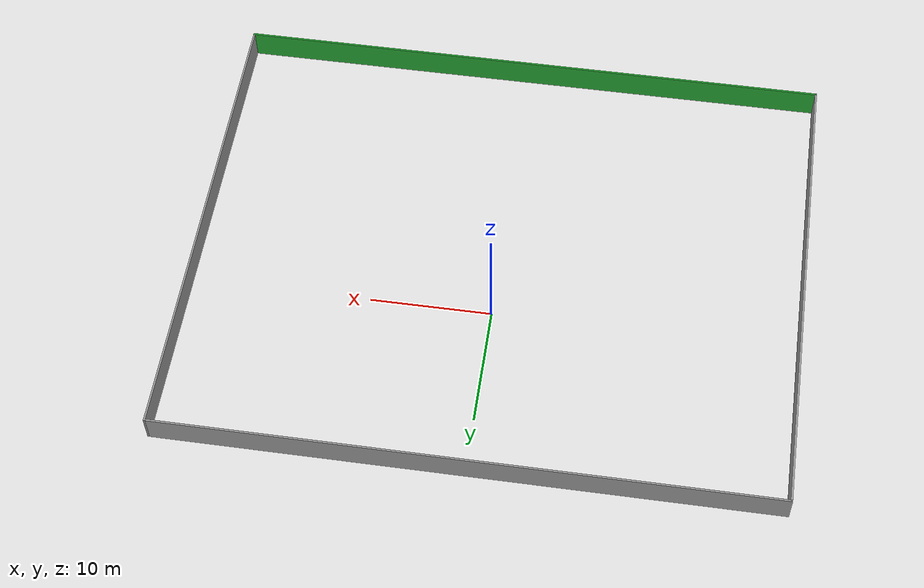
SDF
<sdf version="1.5">
 <world name="vrc_task_1">
  <scene><shadows>0</shadows><grid>false</grid><sky><clouds><speed>10</speed></clouds></sky></scene>
  <physics type="ode">
   <gravity>0 0 -9.81</gravity>
   <ode>
    <solver>
     <use_dynamic_moi_rescaling>true</use_dynamic_moi_rescaling>
     <type>quick</type>
     <iters>50</iters>
     <sor>1.0</sor>
    </solver>
    <constraints>
     <cfm>0.0</cfm>
     <erp>0.2</erp>
     <contact_max_correcting_vel>100.0</contact_max_correcting_vel>
     <contact_surface_layer>0.0</contact_surface_layer>
    </constraints>
   </ode>
   <real_time_update_rate>110</real_time_update_rate>
   <max_step_size>0.0091</max_step_size>
  </physics>
  <light type="directional" name="sun">
   <cast_shadows>0</cast_shadows>
   <pose>0 0 100 0 0 0</pose>
   <diffuse>0.8 0.8 0.8 1</diffuse>
   <specular>0.9 0.9 0.9 1</specular>
   <attenuation>
    <range>1000</range>
    <constant>0.9</constant>
    <linear>0.01</linear>
    <quadratic>0.001</quadratic>
   </attenuation>
   <direction>0.2 0.2 -0.9</direction>
  </light>
  <include><name>wall</name><uri>model://wall</uri><pose>0 -5 0   0 0 0</pose></include>
 </world>
</sdf>

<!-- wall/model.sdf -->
<sdf version='1.6'>
  <model name='wall'>
    <link name='Wall_2'>
      <pose frame=''>-24.925 0 0 0 -0 1.5708</pose>
      <self_collide>0</self_collide>
      <kinematic>0</kinematic>
      <visual name='Wall_2_Visual'>
        <pose frame=''>0 0 1.25 0 -0 0</pose>
        <geometry>
          <box>
            <size>40 0.15 2.5</size>
          </box>
        </geometry>
        <material>
          <script>
            <uri>file://media/materials/scripts/gazebo.material</uri>
            <name>Gazebo/Grey</name>
          </script>
          <ambient>1 1 1 1</ambient>
          <diffuse>0.7 0.7 0.7 1</diffuse>
          <specular>0.01 0.01 0.01 1</specular>
          <emissive>0 0 0 1</emissive>
        </material>
        <meta>
          <layer>0</layer>
        </meta>
        <transparency>0</transparency>
        <cast_shadows>1</cast_shadows>
      </visual>
      <collision name='Wall_2_Collision'>
        <laser_retro>0</laser_retro>
        <max_contacts>10</max_contacts>
        <pose frame=''>0 0 1.25 0 -0 0</pose>
        <geometry>
          <box>
            <size>40 0.15 2.5</size>
          </box>
        </geometry>
        <surface>
          <friction>
            <ode>
              <mu>1</mu>
              <mu2>1</mu2>
              <fdir1>0 0 0</fdir1>
              <slip1>0</slip1>
              <slip2>0</slip2>
            </ode>
            <torsional>
              <coefficient>1</coefficient>
              <patch_radius>0</patch_radius>
              <surface_radius>0</surface_radius>
              <use_patch_radius>1</use_patch_radius>
              <ode>
                <slip>0</slip>
              </ode>
            </torsional>
          </friction>
          <bounce>
            <restitution_coefficient>0</restitution_coefficient>
            <threshold>1e+06</threshold>
          </bounce>
          <contact>
            <collide_without_contact>0</collide_without_contact>
            <collide_without_contact_bitmask>1</collide_without_contact_bitmask>
            <collide_bitmask>1</collide_bitmask>
            <ode>
              <soft_cfm>0</soft_cfm>
              <soft_erp>0.2</soft_erp>
              <kp>1e+13</kp>
              <kd>1</kd>
              <max_vel>0.01</max_vel>
              <min_depth>0</min_depth>
            </ode>
            <bullet>
              <split_impulse>1</split_impulse>
              <split_impulse_penetration_threshold>-0.01</split_impulse_penetration_threshold>
              <soft_cfm>0</soft_cfm>
              <soft_erp>0.2</soft_erp>
              <kp>1e+13</kp>
              <kd>1</kd>
            </bullet>
          </contact>
        </surface>
      </collision>
    </link>
    <link name='Wall_4'>
      <pose frame=''>-1e-06 -19.925 0 0 -0 0</pose>
      <self_collide>0</self_collide>
      <kinematic>0</kinematic>
      <gravity>1</gravity>
      <inertial>
        <mass>1</mass>
        <pose frame=''>0 0 0 0 -0 0</pose>
        <inertia>
          <ixx>1</ixx>
          <ixy>0</ixy>
          <ixz>0</ixz>
          <iyy>1</iyy>
          <iyz>0</iyz>
          <izz>1</izz>
        </inertia>
      </inertial>
      <visual name='Wall_4_Visual'>
        <pose frame=''>0 0 1.25 0 -0 0</pose>
        <geometry>
          <box>
            <size>50 0.15 2.5</size>
          </box>
        </geometry>
        <material>
          <script>
            <uri>file://media/materials/scripts/gazebo.material</uri>
            <name>Gazebo/Green</name>
          </script>
          <ambient>1 1 1 1</ambient>
          <diffuse>0.7 0.7 0.7 1</diffuse>
          <specular>0.01 0.01 0.01 1</specular>
          <emissive>0 0 0 1</emissive>
          <shader type='vertex'>
            <normal_map>__default__</normal_map>
          </shader>
        </material>
        <meta>
          <layer>0</layer>
        </meta>
        <transparency>0</transparency>
        <cast_shadows>1</cast_shadows>
      </visual>
      <collision name='Wall_4_Collision'>
        <laser_retro>0</laser_retro>
        <max_contacts>10</max_contacts>
        <pose frame=''>0 0 1.25 0 -0 0</pose>
        <geometry>
          <box>
            <size>50 0.15 2.5</size>
          </box>
        </geometry>
        <surface>
          <friction>
            <ode>
              <mu>1</mu>
              <mu2>1</mu2>
              <fdir1>0 0 0</fdir1>
              <slip1>0</slip1>
              <slip2>0</slip2>
            </ode>
            <torsional>
              <coefficient>1</coefficient>
              <patch_radius>0</patch_radius>
              <surface_radius>0</surface_radius>
              <use_patch_radius>1</use_patch_radius>
              <ode>
                <slip>0</slip>
              </ode>
            </torsional>
          </friction>
          <bounce>
            <restitution_coefficient>0</restitution_coefficient>
            <threshold>1e+06</threshold>
          </bounce>
          <contact>
            <collide_without_contact>0</collide_without_contact>
            <collide_without_contact_bitmask>1</collide_without_contact_bitmask>
            <collide_bitmask>1</collide_bitmask>
            <ode>
              <soft_cfm>0</soft_cfm>
              <soft_erp>0.2</soft_erp>
              <kp>1e+13</kp>
              <kd>1</kd>
              <max_vel>0.01</max_vel>
              <min_depth>0</min_depth>
            </ode>
            <bullet>
              <split_impulse>1</split_impulse>
              <split_impulse_penetration_threshold>-0.01</split_impulse_penetration_threshold>
              <soft_cfm>0</soft_cfm>
              <soft_erp>0.2</soft_erp>
              <kp>1e+13</kp>
              <kd>1</kd>
            </bullet>
          </contact>
        </surface>
      </collision>
    </link>
    <link name='Wall_5'>
      <pose frame=''>24.925 0 0 0 -0 1.5708</pose>
      <self_collide>0</self_collide>
      <kinematic>0</kinematic>
      <visual name='Wall_5_Visual'>
        <pose frame=''>0 0 1.25 0 -0 0</pose>
        <geometry>
          <box>
            <size>40 0.15 2.5</size>
          </box>
        </geometry>
        <material>
          <script>
            <uri>file://media/materials/scripts/gazebo.material</uri>
            <name>Gazebo/Grey</name>
          </script>
          <ambient>1 1 1 1</ambient>
          <diffuse>0.7 0.7 0.7 1</diffuse>
          <specular>0.01 0.01 0.01 1</specular>
          <emissive>0 0 0 1</emissive>
        </material>
        <meta>
          <layer>0</layer>
        </meta>
        <transparency>0</transparency>
        <cast_shadows>1</cast_shadows>
      </visual>
      <collision name='Wall_5_Collision'>
        <laser_retro>0</laser_retro>
        <max_contacts>10</max_contacts>
        <pose frame=''>0 0 1.25 0 -0 0</pose>
        <geometry>
          <box>
            <size>40 0.15 2.5</size>
          </box>
        </geometry>
        <surface>
          <friction>
            <ode>
              <mu>1</mu>
              <mu2>1</mu2>
              <fdir1>0 0 0</fdir1>
              <slip1>0</slip1>
              <slip2>0</slip2>
            </ode>
            <torsional>
              <coefficient>1</coefficient>
              <patch_radius>0</patch_radius>
              <surface_radius>0</surface_radius>
              <use_patch_radius>1</use_patch_radius>
              <ode>
                <slip>0</slip>
              </ode>
            </torsional>
          </friction>
          <bounce>
            <restitution_coefficient>0</restitution_coefficient>
            <threshold>1e+06</threshold>
          </bounce>
          <contact>
            <collide_without_contact>0</collide_without_contact>
            <collide_without_contact_bitmask>1</collide_without_contact_bitmask>
            <collide_bitmask>1</collide_bitmask>
            <ode>
              <soft_cfm>0</soft_cfm>
              <soft_erp>0.2</soft_erp>
              <kp>1e+13</kp>
              <kd>1</kd>
              <max_vel>0.01</max_vel>
              <min_depth>0</min_depth>
            </ode>
            <bullet>
              <split_impulse>1</split_impulse>
              <split_impulse_penetration_threshold>-0.01</split_impulse_penetration_threshold>
              <soft_cfm>0</soft_cfm>
              <soft_erp>0.2</soft_erp>
              <kp>1e+13</kp>
              <kd>1</kd>
            </bullet>
          </contact>
        </surface>
      </collision>
    </link>
    <link name='Wall_7'>
      <pose frame=''>-1e-06 19.925 0 0 -0 3.14159</pose>
      <self_collide>0</self_collide>
      <kinematic>0</kinematic>
      <visual name='Wall_7_Visual'>
        <pose frame=''>0 0 1.25 0 -0 0</pose>
        <geometry>
          <box>
            <size>50 0.15 2.5</size>
          </box>
        </geometry>
        <material>
          <script>
            <uri>file://media/materials/scripts/gazebo.material</uri>
            <name>Gazebo/Grey</name>
          </script>
          <ambient>1 1 1 1</ambient>
          <diffuse>0.7 0.7 0.7 1</diffuse>
          <specular>0.01 0.01 0.01 1</specular>
          <emissive>0 0 0 1</emissive>
        </material>
        <meta>
          <layer>0</layer>
        </meta>
        <transparency>0</transparency>
        <cast_shadows>1</cast_shadows>
      </visual>
      <collision name='Wall_7_Collision'>
        <laser_retro>0</laser_retro>
        <max_contacts>10</max_contacts>
        <pose frame=''>0 0 1.25 0 -0 0</pose>
        <geometry>
          <box>
            <size>50 0.15 2.5</size>
          </box>
        </geometry>
        <surface>
          <friction>
            <ode>
              <mu>1</mu>
              <mu2>1</mu2>
              <fdir1>0 0 0</fdir1>
              <slip1>0</slip1>
              <slip2>0</slip2>
            </ode>
            <torsional>
              <coefficient>1</coefficient>
              <patch_radius>0</patch_radius>
              <surface_radius>0</surface_radius>
              <use_patch_radius>1</use_patch_radius>
              <ode>
                <slip>0</slip>
              </ode>
            </torsional>
          </friction>
          <bounce>
            <restitution_coefficient>0</restitution_coefficient>
            <threshold>1e+06</threshold>
          </bounce>
          <contact>
            <collide_without_contact>0</collide_without_contact>
            <collide_without_contact_bitmask>1</collide_without_contact_bitmask>
            <collide_bitmask>1</collide_bitmask>
            <ode>
              <soft_cfm>0</soft_cfm>
              <soft_erp>0.2</soft_erp>
              <kp>1e+13</kp>
              <kd>1</kd>
              <max_vel>0.01</max_vel>
              <min_depth>0</min_depth>
            </ode>
            <bullet>
              <split_impulse>1</split_impulse>
              <split_impulse_penetration_threshold>-0.01</split_impulse_penetration_threshold>
              <soft_cfm>0</soft_cfm>
              <soft_erp>0.2</soft_erp>
              <kp>1e+13</kp>
              <kd>1</kd>
            </bullet>
          </contact>
        </surface>
      </collision>
    </link>
    <static>1</static>
    <allow_auto_disable>1</allow_auto_disable>
  </model>
</sdf>
